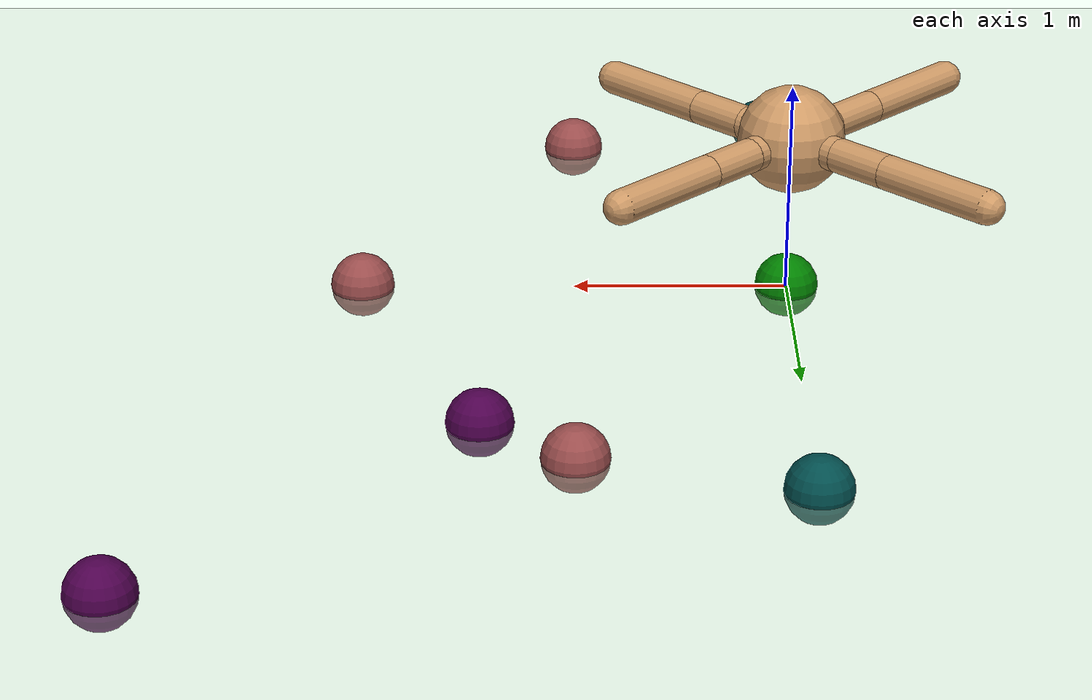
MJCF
<!-- Same a gym ant but with gear ratio of 30 and sites -->
<mujoco model="ant">
    <compiler angle="degree" coordinate="local" inertiafromgeom="true"/>
    <option integrator="RK4" timestep="0.01"/>
    <custom>
        <numeric data="0.0 0.0 0.55 1.0 0.0 0.0 0.0 0.0 1.0 0.0 -1.0 0.0 -1.0 0.0 1.0" name="init_qpos"/>
    </custom>
    <default>
        <joint armature="1" damping="1" limited="true"/>
        <geom conaffinity="0" condim="3" density="5.0" friction="1 0.5 0.5" margin="0.01" rgba="0.8 0.6 0.4 1"/>
    </default>
    <asset>
        <texture builtin="gradient" height="100" rgb1="1 1 1" rgb2="0 0 0" type="skybox" width="100"/>
        <texture builtin="flat" height="1278" mark="cross" markrgb="1 1 1" name="texgeom" random="0.01" rgb1="0.8 0.6 0.4" rgb2="0.8 0.6 0.4" type="cube" width="127"/>
        <texture builtin="checker" height="100" name="texplane" rgb1="0 0 0" rgb2="0.8 0.8 0.8" type="2d" width="100"/>
        <material name="MatPlane" reflectance="0.5" shininess="1" specular="1" texrepeat="60 60" texture="texplane"/>
        <material name="geom" texture="texgeom" texuniform="true"/>
    </asset>
    <worldbody>
        <light cutoff="100" diffuse="1 1 1" dir="-0 0 -1.3" directional="true" exponent="1" pos="0 0 1.3" specular=".1 .1 .1"/>
        <geom conaffinity="1" condim="3" material="MatPlane" name="floor" pos="0 0 0" rgba="0.8 0.9 0.8 1" size="40 40 40" type="plane"/>
        <body name="torso" pos="0 0 0.75">
            <geom name="torso_geom" pos="0 0 0" size="0.25" type="sphere"/>
            <joint armature="0" damping="0" limited="false" margin="0.01" name="root" pos="0 0 0" type="free"/>
            <body name="front_left_leg" pos="0 0 0">
                <geom fromto="0.0 0.0 0.0 0.2 0.2 0.0" name="aux_1_geom" size="0.08" type="capsule"/>
                <body name="aux_1" pos="0.2 0.2 0">
                    <joint axis="0 0 1" name="hip_1" pos="0.0 0.0 0.0" range="-30 30" type="hinge"/>
                    <geom fromto="0.0 0.0 0.0 0.2 0.2 0.0" name="left_leg_geom" size="0.08" type="capsule"/>
                    <body pos="0.2 0.2 0">
                        <joint axis="-1 1 0" name="ankle_1" pos="0.0 0.0 0.0" range="30 70" type="hinge"/>
                        <geom fromto="0.0 0.0 0.0 0.4 0.4 0.0" name="left_ankle_geom" size="0.08" type="capsule"/>
                    </body>
                </body>
            </body>
            <body name="front_right_leg" pos="0 0 0">
                <geom fromto="0.0 0.0 0.0 -0.2 0.2 0.0" name="aux_2_geom" size="0.08" type="capsule"/>
                <body name="aux_2" pos="-0.2 0.2 0">
                    <joint axis="0 0 1" name="hip_2" pos="0.0 0.0 0.0" range="-30 30" type="hinge"/>
                    <geom fromto="0.0 0.0 0.0 -0.2 0.2 0.0" name="right_leg_geom" size="0.08" type="capsule"/>
                    <body pos="-0.2 0.2 0">
                        <joint axis="1 1 0" name="ankle_2" pos="0.0 0.0 0.0" range="-70 -30" type="hinge"/>
                        <geom fromto="0.0 0.0 0.0 -0.4 0.4 0.0" name="right_ankle_geom" size="0.08" type="capsule"/>
                    </body>
                </body>
            </body>
            <body name="back_leg" pos="0 0 0">
                <geom fromto="0.0 0.0 0.0 -0.2 -0.2 0.0" name="aux_3_geom" size="0.08" type="capsule"/>
                <body name="aux_3" pos="-0.2 -0.2 0">
                    <joint axis="0 0 1" name="hip_3" pos="0.0 0.0 0.0" range="-30 30" type="hinge"/>
                    <geom fromto="0.0 0.0 0.0 -0.2 -0.2 0.0" name="back_leg_geom" size="0.08" type="capsule"/>
                    <body pos="-0.2 -0.2 0">
                        <joint axis="-1 1 0" name="ankle_3" pos="0.0 0.0 0.0" range="-70 -30" type="hinge"/>
                        <geom fromto="0.0 0.0 0.0 -0.4 -0.4 0.0" name="third_ankle_geom" size="0.08" type="capsule"/>
                    </body>
                </body>
            </body>
            <body name="right_back_leg" pos="0 0 0">
                <geom fromto="0.0 0.0 0.0 0.2 -0.2 0.0" name="aux_4_geom" size="0.08" type="capsule"/>
                <body name="aux_4" pos="0.2 -0.2 0">
                    <joint axis="0 0 1" name="hip_4" pos="0.0 0.0 0.0" range="-30 30" type="hinge"/>
                    <geom fromto="0.0 0.0 0.0 0.2 -0.2 0.0" name="rightback_leg_geom" size="0.08" type="capsule"/>
                    <body pos="0.2 -0.2 0">
                        <joint axis="1 1 0" name="ankle_4" pos="0.0 0.0 0.0" range="30 70" type="hinge"/>
                        <geom fromto="0.0 0.0 0.0 0.4 -0.4 0.0" name="fourth_ankle_geom" size="0.08" type="capsule"/>
                    </body>
                </body>
            </body>
        </body>
        <!--By default, this goal will be hidden under the floor-->
        <site name="goal" rgba="0 1 1 0.5" pos="0. 0. -1" size="0.5" />
        <site name="origin" rgba="1 0 0 0.5" pos="0. 0. 0." size="0.1" />
        <!-- just for visualization -->
        <site name="target0" pos="0 0 .01" rgba="0 0.5 0 1" type="sphere" size=".15"/>
        <site name="target1" pos="1 1.73 .01" rgba=".6 .3 .3 1" type="sphere" size=".15"/>
        <site name="target2" pos="1 -1.73 .01" rgba=".6 .3 .3 1" type="sphere" size=".15"/>
        <site name="target3" pos="2 0 .01" rgba=".6 .3 .3 1" type="sphere" size=".15"/>
        <site name="target4" pos="1.41 1.41 .01" rgba=".3 0 .3 1" type="sphere" size=".15"/>
        <site name="target7" pos="2.83 2.83 .01" rgba=".3 0 .3 1" type="sphere" size=".15"/>
        <site name="target5" pos="0 2 .01" rgba="0 .3 .3 1" type="sphere" size=".15"/>
        <site name="target6" pos="0 -2 .01" rgba="0 .3 .3 1" type="sphere" size=".15"/>

    </worldbody>
    <actuator>
        <motor ctrllimited="true" ctrlrange="-1.0 1.0" joint="hip_4" gear="30"/>
        <motor ctrllimited="true" ctrlrange="-1.0 1.0" joint="ankle_4" gear="30"/>
        <motor ctrllimited="true" ctrlrange="-1.0 1.0" joint="hip_1" gear="30"/>
        <motor ctrllimited="true" ctrlrange="-1.0 1.0" joint="ankle_1" gear="30"/>
        <motor ctrllimited="true" ctrlrange="-1.0 1.0" joint="hip_2" gear="30"/>
        <motor ctrllimited="true" ctrlrange="-1.0 1.0" joint="ankle_2" gear="30"/>
        <motor ctrllimited="true" ctrlrange="-1.0 1.0" joint="hip_3" gear="30"/>
        <motor ctrllimited="true" ctrlrange="-1.0 1.0" joint="ankle_3" gear="30"/>
    </actuator>
</mujoco>
